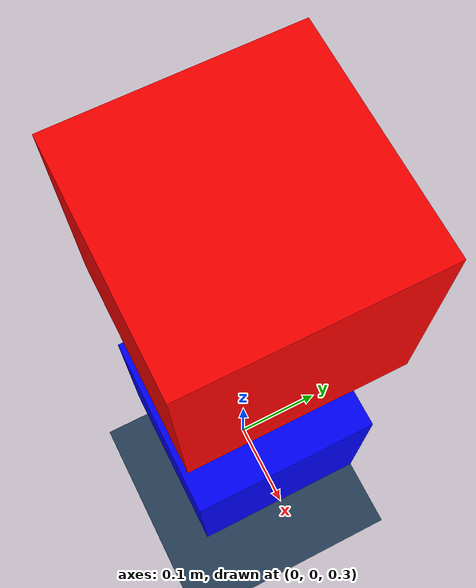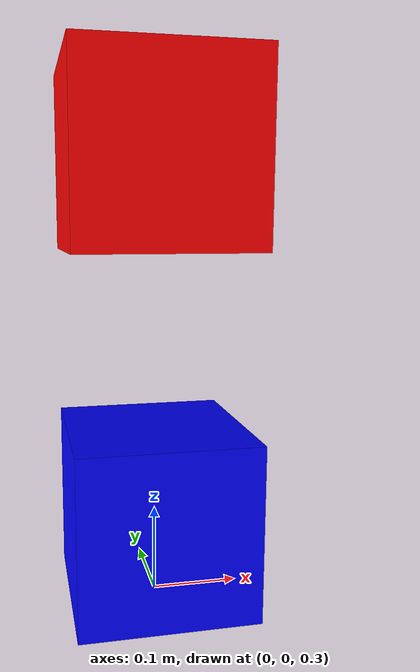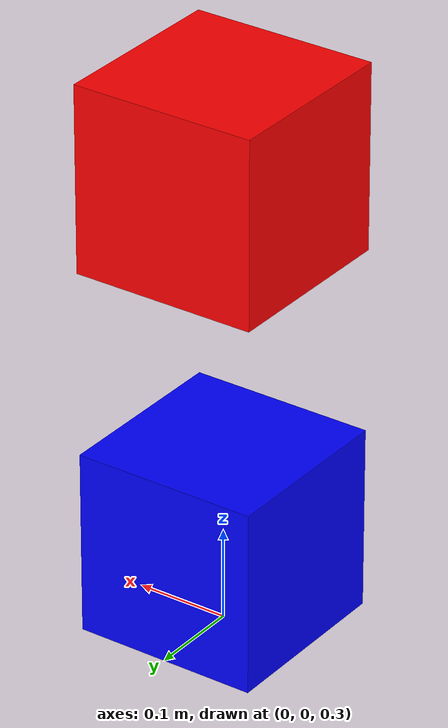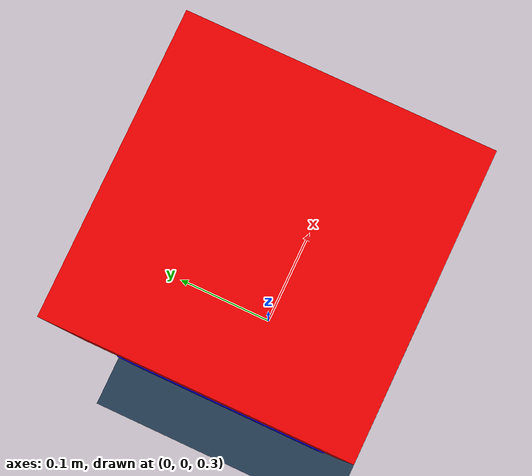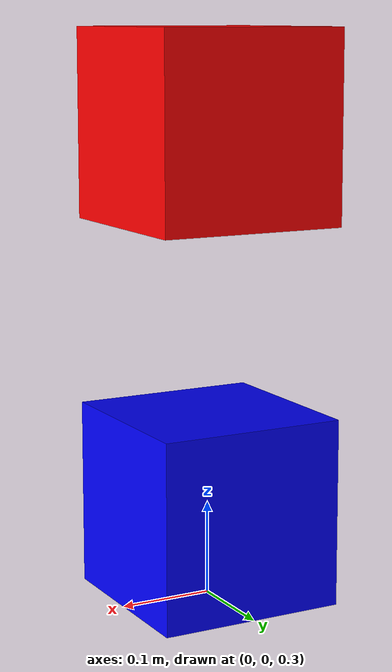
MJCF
<mujoco model="jk5">
    <compiler angle="radian" meshdir="../meshes/" coordinate="local"/>
    <size njmax="5000" nconmax="1000" />
    <option timestep="1e-3"/>
    <asset>
        <material name='floor_mat' texture="floor_tex"  shininess="0.8" texrepeat="10 10" specular="0.7"  reflectance="0.5" />
        <texture name="floor_tex" type="2d" builtin="checker" rgb1=".2 .3 .4" rgb2=".1 .2 .3" width="100" height="100" />
    </asset>
    <worldbody>
        <light name="light" mode="targetbody" target="box1" directional="true" pos="1 1 3" />
        <geom name='floor' material="floor_mat" pos='0 0 0' size='2.5 2.5 0.1'  type='plane'/>
        <!--robot-->
        <body name="box1" pos="0 0 0.8">
            <inertial pos="0 0 0" mass="2" diaginertia="0.1 0.1 0.1" />
            <geom type="box" pos="0 0 0" size="0.1 0.1 0.1" rgba="1 0 0 1"/>
            <site name="sensor on box1" pos="0 0 -0.1" rgba="1 0 0 0" size="0.01 0.01 0.01" type="box"/>
            <joint type="free"/>
        </body>
        <body name="box2" pos="0 0 0.4">
            <inertial pos="0 0 0" mass="4" diaginertia="0.1 0.1 0.1" />
            <geom type="box" size="0.1 0.1 0.1"  rgba="0 0 1 1"/>
            <joint type="free"/>
            <site name="sensor on box2" pos="0 0 0" rgba="1 0 0 0" size="0.01 0.01 0.01" type="box"/>
        </body>
    </worldbody>
    <equality>
        <connect name="test" active="true" body1="box1" body2="box2" anchor="0 0 -0.2"/>
    </equality>
    <sensor>
        <force name="force on box1" site="sensor on box1"/>
        <force name="force on box2" site="sensor on box2"/>
    </sensor>
</mujoco>
